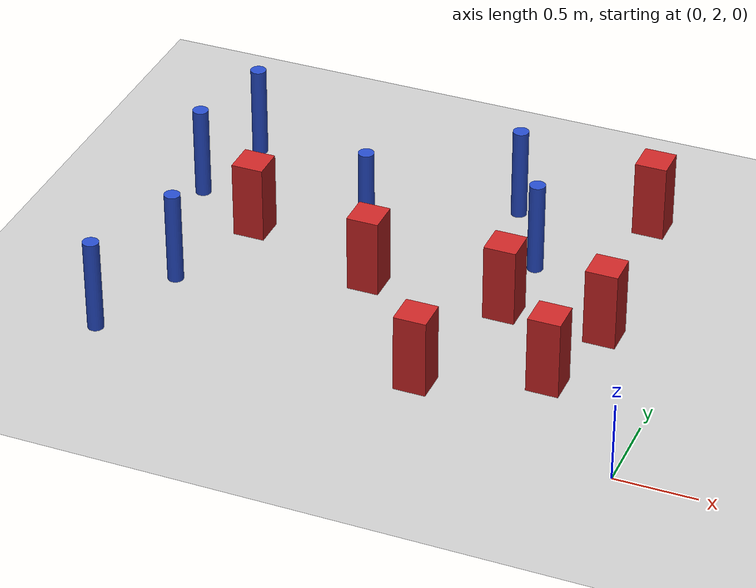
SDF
<sdf version="1.6">
 <world name="default">
  <model name="ground_plane">
   <static>1</static>
   <link name="link">
    <collision name="collision">
     <geometry><plane><normal>0 0 1</normal><size>100 100</size></plane></geometry>
     <surface><friction><ode><mu>100</mu><mu2>50</mu2></ode></friction></surface>
    </collision>
    <visual name="visual">
     <cast_shadows>0</cast_shadows>
     <geometry><plane><normal>0 0 1</normal><size>100 100</size></plane></geometry>
     <material>
      <ambient>1.0 1.0 1.0 1.0</ambient>
      <diffuse>0.8 0.8 0.8 1.0</diffuse>
      <specular>0.01 0.01 0.01 1.000000</specular>
     </material>
    </visual>
   </link>
  </model>
  <model name="square_post_obstacle33">
   <static>true</static>
   <pose>-0.62941892189 2.68996855208 1.91545236811e-07 -7.35059704564e-06 1.12565212e-07 2.39332434364e-05</pose>
   <link name="link">
    <pose>0 0 0.25 0 -0 0</pose>
    <inertial>
     <mass>100</mass>
     <inertia>
      <ixx>0.166667</ixx>
      <ixy>0</ixy>
      <ixz>0</ixz>
      <iyy>0.166667</iyy>
      <iyz>0</iyz>
      <izz>0.166667</izz>
     </inertia>
    </inertial>
    <collision name="collision"><geometry><box><size>.2 .2 .5</size></box></geometry></collision>
    <visual name="visual">
     <geometry><box><size>.2 .2 .5</size></box></geometry>
     <material>
      <script><name>Gazebo/Red</name><uri>file://media/materials/scripts/gazebo.material</uri></script>
     </material>
    </visual>
   </link>
  </model>
  <model name="pole_obstacle29">
   <static>true</static>
   <pose>-2.19478694647 3.73792876518 7.38925637345e-09 -8.47170692798e-08 1.24976764939e-08 -1.74513093025e-07</pose>
   <link name="link">
    <pose>0 0 0.3 0 -0 0</pose>
    <inertial>
     <mass>1</mass>
     <inertia><ixx>0.145833</ixx><ixy>0</ixy><ixz>0</ixz><iyy>0.145833</iyy><iyz>0</iyz><izz>0.125</izz></inertia>
    </inertial>
    <collision name="collision">
     <geometry><cylinder><radius>0.05</radius><length>.6</length></cylinder></geometry>
    </collision>
    <visual name="visual">
     <geometry><cylinder><radius>0.05</radius><length>.6</length></cylinder></geometry>
     <material>
      <script><name>Gazebo/Blue</name><uri>file://media/materials/scripts/gazebo.material</uri></script>
     </material>
    </visual>
   </link>
  </model>
  <model name="pole_obstacle32">
   <static>true</static>
   <pose>-1.10701310764 3.78948826834 7.38925637345e-09 -8.47170692799e-08 1.24976765053e-08 -1.74513093017e-07</pose>
   <link name="link">
    <pose>0 0 0.3 0 -0 0</pose>
    <inertial>
     <mass>1</mass>
     <inertia><ixx>0.145833</ixx><ixy>0</ixy><ixz>0</ixz><iyy>0.145833</iyy><iyz>0</iyz><izz>0.125</izz></inertia>
    </inertial>
    <collision name="collision">
     <geometry><cylinder><radius>0.05</radius><length>.6</length></cylinder></geometry>
    </collision>
    <visual name="visual">
     <geometry><cylinder><radius>0.05</radius><length>.6</length></cylinder></geometry>
     <material>
      <script><name>Gazebo/Blue</name><uri>file://media/materials/scripts/gazebo.material</uri></script>
     </material>
    </visual>
   </link>
  </model>
  <model name="square_post_obstacle44">
   <static>true</static>
   <pose>-1.33822657588 2.41501504612 1.91545236811e-07 -7.35059704564e-06 1.12565212e-07 2.39332434364e-05</pose>
   <link name="link">
    <pose>0 0 0.25 0 -0 0</pose>
    <inertial>
     <mass>100</mass>
     <inertia>
      <ixx>0.166667</ixx>
      <ixy>0</ixy>
      <ixz>0</ixz>
      <iyy>0.166667</iyy>
      <iyz>0</iyz>
      <izz>0.166667</izz>
     </inertia>
    </inertial>
    <collision name="collision"><geometry><box><size>.2 .2 .5</size></box></geometry></collision>
    <visual name="visual">
     <geometry><box><size>.2 .2 .5</size></box></geometry>
     <material>
      <script><name>Gazebo/Red</name><uri>file://media/materials/scripts/gazebo.material</uri></script>
     </material>
    </visual>
   </link>
  </model>
  <model name="square_post_obstacle60">
   <static>true</static>
   <pose>-2.86058432693 3.54175151519 1.91545236811e-07 -7.35059704564e-06 1.12565212e-07 2.39332434364e-05</pose>
   <link name="link">
    <pose>0 0 0.25 0 -0 0</pose>
    <inertial>
     <mass>100</mass>
     <inertia>
      <ixx>0.166667</ixx>
      <ixy>0</ixy>
      <ixz>0</ixz>
      <iyy>0.166667</iyy>
      <iyz>0</iyz>
      <izz>0.166667</izz>
     </inertia>
    </inertial>
    <collision name="collision"><geometry><box><size>.2 .2 .5</size></box></geometry></collision>
    <visual name="visual">
     <geometry><box><size>.2 .2 .5</size></box></geometry>
     <material>
      <script><name>Gazebo/Red</name><uri>file://media/materials/scripts/gazebo.material</uri></script>
     </material>
    </visual>
   </link>
  </model>
  <model name="square_post_obstacle90">
   <static>true</static>
   <pose>-1.98172330749 3.25984380256 1.91545236811e-07 -7.35059704564e-06 1.12565212e-07 2.39332434364e-05</pose>
   <link name="link">
    <pose>0 0 0.25 0 -0 0</pose>
    <inertial>
     <mass>100</mass>
     <inertia>
      <ixx>0.166667</ixx>
      <ixy>0</ixy>
      <ixz>0</ixz>
      <iyy>0.166667</iyy>
      <iyz>0</iyz>
      <izz>0.166667</izz>
     </inertia>
    </inertial>
    <collision name="collision"><geometry><box><size>.2 .2 .5</size></box></geometry></collision>
    <visual name="visual">
     <geometry><box><size>.2 .2 .5</size></box></geometry>
     <material>
      <script><name>Gazebo/Red</name><uri>file://media/materials/scripts/gazebo.material</uri></script>
     </material>
    </visual>
   </link>
  </model>
  <model name="square_post_obstacle97">
   <static>true</static>
   <pose>-0.485385563064 3.2686350951 1.91545236811e-07 -7.35059704564e-06 1.12565212e-07 2.39332434364e-05</pose>
   <link name="link">
    <pose>0 0 0.25 0 -0 0</pose>
    <inertial>
     <mass>100</mass>
     <inertia>
      <ixx>0.166667</ixx>
      <ixy>0</ixy>
      <ixz>0</ixz>
      <iyy>0.166667</iyy>
      <iyz>0</iyz>
      <izz>0.166667</izz>
     </inertia>
    </inertial>
    <collision name="collision"><geometry><box><size>.2 .2 .5</size></box></geometry></collision>
    <visual name="visual">
     <geometry><box><size>.2 .2 .5</size></box></geometry>
     <material>
      <script><name>Gazebo/Red</name><uri>file://media/materials/scripts/gazebo.material</uri></script>
     </material>
    </visual>
   </link>
  </model>
  <model name="pole_obstacle132">
   <static>true</static>
   <pose>-3.21013823152 4.39571737718 7.38925637345e-09 -8.47170692798e-08 1.24976765033e-08 -1.74513093019e-07</pose>
   <link name="link">
    <pose>0 0 0.3 0 -0 0</pose>
    <inertial>
     <mass>1</mass>
     <inertia><ixx>0.145833</ixx><ixy>0</ixy><ixz>0</ixz><iyy>0.145833</iyy><iyz>0</iyz><izz>0.125</izz></inertia>
    </inertial>
    <collision name="collision">
     <geometry><cylinder><radius>0.05</radius><length>.6</length></cylinder></geometry>
    </collision>
    <visual name="visual">
     <geometry><cylinder><radius>0.05</radius><length>.6</length></cylinder></geometry>
     <material>
      <script><name>Gazebo/Blue</name><uri>file://media/materials/scripts/gazebo.material</uri></script>
     </material>
    </visual>
   </link>
  </model>
  <model name="pole_obstacle135">
   <static>true</static>
   <pose>-3.29960236184 2.22583665025 7.38925637345e-09 -8.471706928e-08 1.24976765098e-08 -1.74513093016e-07</pose>
   <link name="link">
    <pose>0 0 0.3 0 -0 0</pose>
    <inertial>
     <mass>1</mass>
     <inertia><ixx>0.145833</ixx><ixy>0</ixy><ixz>0</ixz><iyy>0.145833</iyy><iyz>0</iyz><izz>0.125</izz></inertia>
    </inertial>
    <collision name="collision">
     <geometry><cylinder><radius>0.05</radius><length>.6</length></cylinder></geometry>
    </collision>
    <visual name="visual">
     <geometry><cylinder><radius>0.05</radius><length>.6</length></cylinder></geometry>
     <material>
      <script><name>Gazebo/Blue</name><uri>file://media/materials/scripts/gazebo.material</uri></script>
     </material>
    </visual>
   </link>
  </model>
  <model name="pole_obstacle178">
   <static>true</static>
   <pose>-1.41124363965 4.3278385688 7.38925637345e-09 -8.47170692799e-08 1.24976765033e-08 -1.74513093018e-07</pose>
   <link name="link">
    <pose>0 0 0.3 0 -0 0</pose>
    <inertial>
     <mass>1</mass>
     <inertia><ixx>0.145833</ixx><ixy>0</ixy><ixz>0</ixz><iyy>0.145833</iyy><iyz>0</iyz><izz>0.125</izz></inertia>
    </inertial>
    <collision name="collision">
     <geometry><cylinder><radius>0.05</radius><length>.6</length></cylinder></geometry>
    </collision>
    <visual name="visual">
     <geometry><cylinder><radius>0.05</radius><length>.6</length></cylinder></geometry>
     <material>
      <script><name>Gazebo/Blue</name><uri>file://media/materials/scripts/gazebo.material</uri></script>
     </material>
    </visual>
   </link>
  </model>
  <model name="square_post_obstacle174">
   <static>true</static>
   <pose>-0.588597129025 4.48532298802 1.91545236811e-07 -7.35059704564e-06 1.12565212e-07 2.39332434364e-05</pose>
   <link name="link">
    <pose>0 0 0.25 0 -0 0</pose>
    <inertial>
     <mass>100</mass>
     <inertia>
      <ixx>0.166667</ixx>
      <ixy>0</ixy>
      <ixz>0</ixz>
      <iyy>0.166667</iyy>
      <iyz>0</iyz>
      <izz>0.166667</izz>
     </inertia>
    </inertial>
    <collision name="collision"><geometry><box><size>.2 .2 .5</size></box></geometry></collision>
    <visual name="visual">
     <geometry><box><size>.2 .2 .5</size></box></geometry>
     <material>
      <script><name>Gazebo/Red</name><uri>file://media/materials/scripts/gazebo.material</uri></script>
     </material>
    </visual>
   </link>
  </model>
  <model name="square_post_obstacle180">
   <static>true</static>
   <pose>-1.11863178164 3.27913475068 1.91545236811e-07 -7.35059704564e-06 1.12565212e-07 2.39332434364e-05</pose>
   <link name="link">
    <pose>0 0 0.25 0 -0 0</pose>
    <inertial>
     <mass>100</mass>
     <inertia>
      <ixx>0.166667</ixx>
      <ixy>0</ixy>
      <ixz>0</ixz>
      <iyy>0.166667</iyy>
      <iyz>0</iyz>
      <izz>0.166667</izz>
     </inertia>
    </inertial>
    <collision name="collision"><geometry><box><size>.2 .2 .5</size></box></geometry></collision>
    <visual name="visual">
     <geometry><box><size>.2 .2 .5</size></box></geometry>
     <material>
      <script><name>Gazebo/Red</name><uri>file://media/materials/scripts/gazebo.material</uri></script>
     </material>
    </visual>
   </link>
  </model>
  <model name="pole_obstacle217">
   <static>true</static>
   <pose>-3.34002999043 3.81055002078 7.38925637345e-09 -8.471706928e-08 1.24976765098e-08 -1.74513093016e-07</pose>
   <link name="link">
    <pose>0 0 0.3 0 -0 0</pose>
    <inertial>
     <mass>1</mass>
     <inertia><ixx>0.145833</ixx><ixy>0</ixy><ixz>0</ixz><iyy>0.145833</iyy><iyz>0</iyz><izz>0.125</izz></inertia>
    </inertial>
    <collision name="collision">
     <geometry><cylinder><radius>0.05</radius><length>.6</length></cylinder></geometry>
    </collision>
    <visual name="visual">
     <geometry><cylinder><radius>0.05</radius><length>.6</length></cylinder></geometry>
     <material>
      <script><name>Gazebo/Blue</name><uri>file://media/materials/scripts/gazebo.material</uri></script>
     </material>
    </visual>
   </link>
  </model>
  <model name="pole_obstacle226">
   <static>true</static>
   <pose>-3.08308999043 2.86775002078 7.38925637345e-09 -8.471706928e-08 1.24976765098e-08 -1.74513093016e-07</pose>
   <link name="link">
    <pose>0 0 0.3 0 -0 0</pose>
    <inertial>
     <mass>1</mass>
     <inertia><ixx>0.145833</ixx><ixy>0</ixy><ixz>0</ixz><iyy>0.145833</iyy><iyz>0</iyz><izz>0.125</izz></inertia>
    </inertial>
    <collision name="collision">
     <geometry><cylinder><radius>0.05</radius><length>.6</length></cylinder></geometry>
    </collision>
    <visual name="visual">
     <geometry><cylinder><radius>0.05</radius><length>.6</length></cylinder></geometry>
     <material>
      <script><name>Gazebo/Blue</name><uri>file://media/materials/scripts/gazebo.material</uri></script>
     </material>
    </visual>
   </link>
  </model>
 </world>
</sdf>
